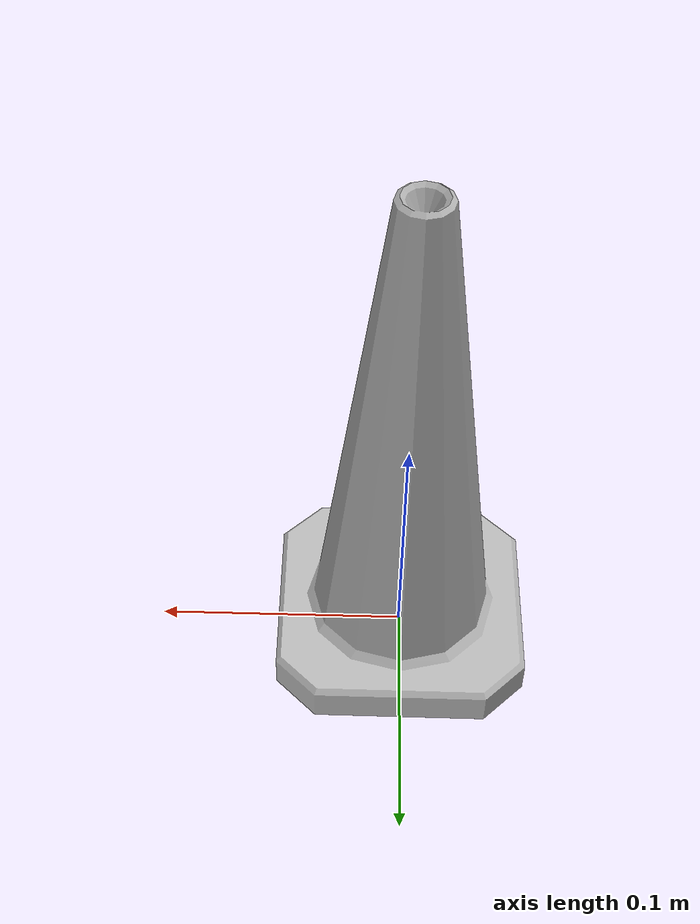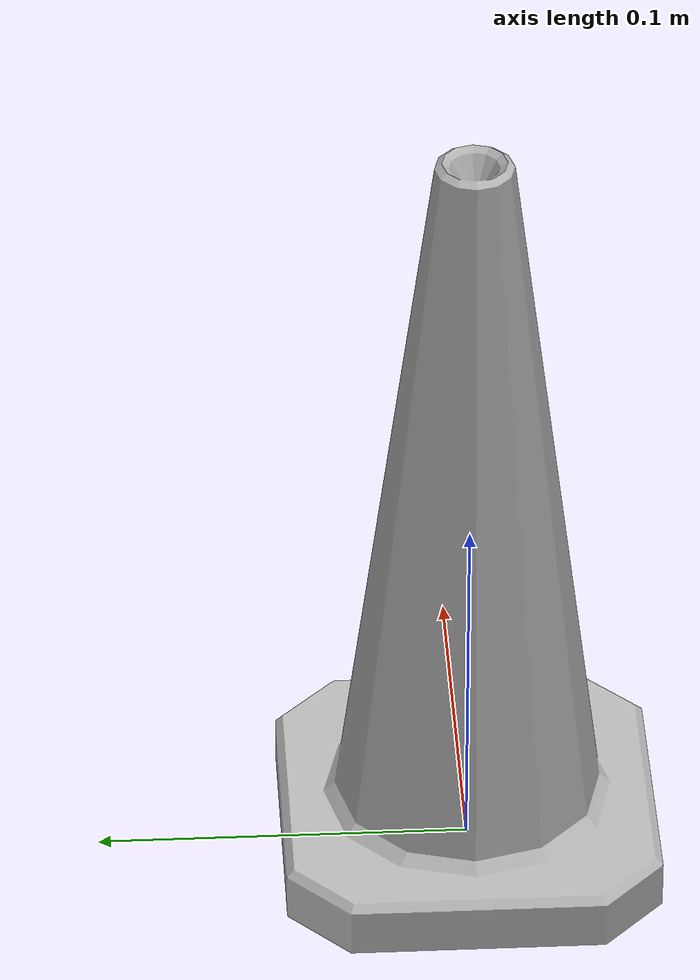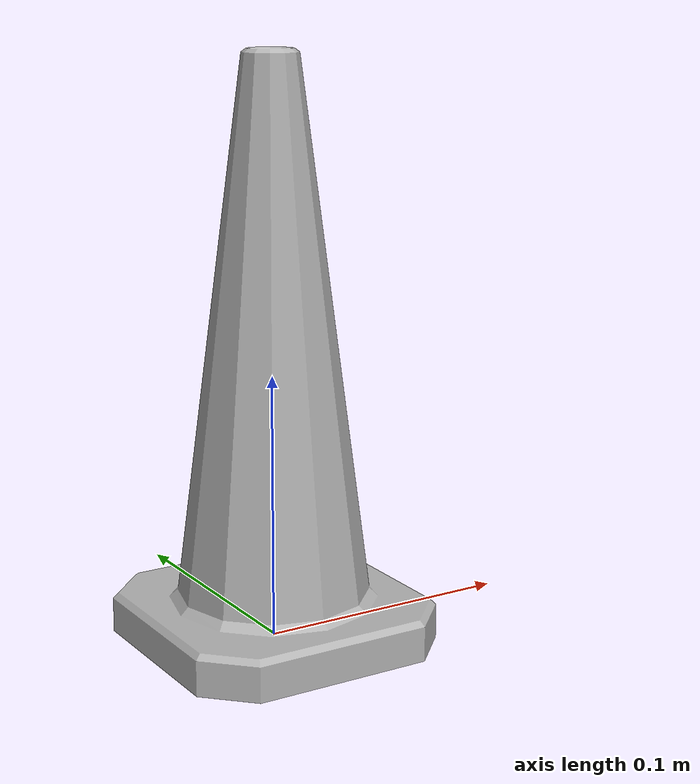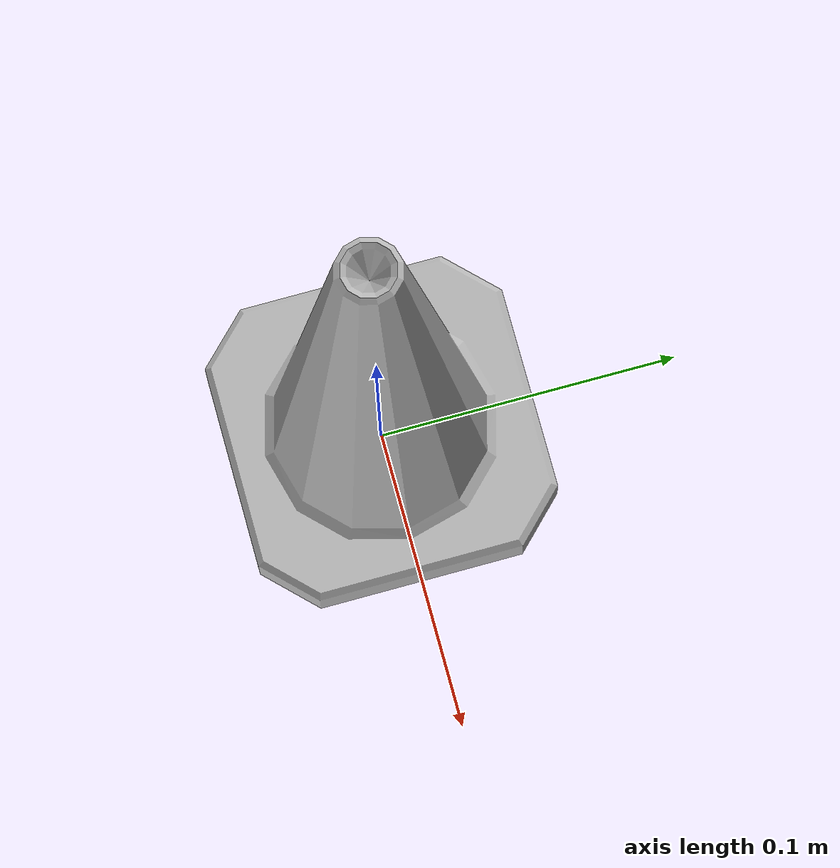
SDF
<?xml version="1.0" ?>
<sdf version="1.5">
  <model name="construction_cone">
    <link name="link">
      <collision name="collision">
        <geometry>
          <mesh>
            <scale>2 2 2</scale>
            <uri>model://construction_cone/meshes/construction_cone.dae</uri>
          </mesh>
        </geometry>
      </collision>
      <inertial>
        <mass>0.026</mass>
        <inertia>
          <ixx>4.16e-4</ixx>
          <iyy>4.16e-4</iyy>
          <izz>4.16e-4</izz>
          <ixy>0</ixy>
          <ixz>0</ixz>
          <iyz>0</iyz>
        </inertia>
      </inertial>
      <velocity_decay>
        <!-- Nonzero values here will help slow the motion -->
        <linear>0.5</linear>
        <angular>0.5</angular>
      </velocity_decay>
      <visual name="visual">
        <geometry>
          <mesh>
            <scale>2 2 2</scale>
            <uri>model://construction_cone/meshes/construction_cone.dae</uri>
          </mesh>
        </geometry>
        <plugin filename="gz-sim-label-system" name="gz::sim::systems::Label">
          <label>1</label>
        </plugin>
      </visual>
    </link>
  </model>
</sdf>
